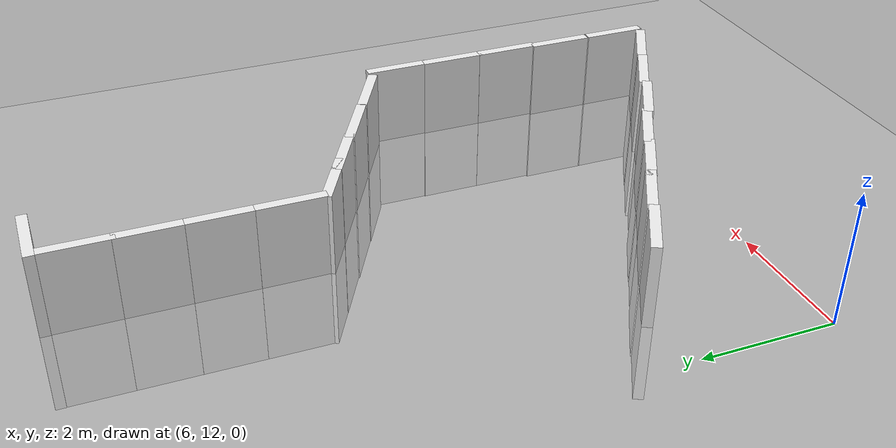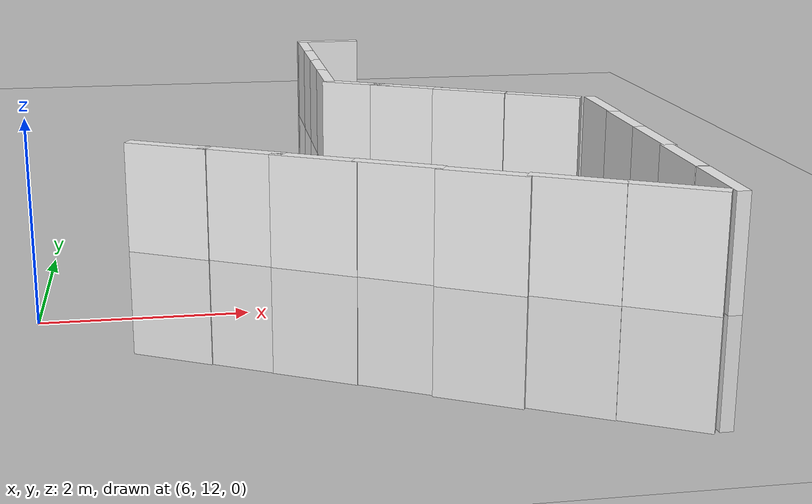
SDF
<sdf version="1.6">
 <world name="default">
  <model name="ground_plane">
   <static>1</static>
   <link name="link">
    <collision name="collision">
     <geometry><plane><normal>0 0 1</normal><size>100 100</size></plane></geometry>
     <surface><friction><ode><mu>100</mu><mu2>50</mu2></ode></friction></surface>
    </collision>
    <visual name="visual">
     <cast_shadows>0</cast_shadows>
     <geometry><plane><normal>0 0 1</normal><size>100 100</size></plane></geometry>
     <material>
      <script><uri>file://media/materials/scripts/gazebo.material</uri><name>Gazebo/Grey</name></script>
     </material>
    </visual>
   </link>
  </model>
  <model name="wall_left_07_clone_3_clone_2_clone_0_clone">
   <link name="Wall_10">
    <inertial>
     <mass>1</mass>
     <inertia><ixx>1</ixx><ixy>0</ixy><ixz>0</ixz><iyy>1</iyy><iyz>0</iyz><izz>1</izz></inertia>
    </inertial>
    <visual name="Wall_10_Visual_0">
     <geometry><box><size>1 0.15 2.5</size></box></geometry>
     <material>
      <script>
       <uri>model://wall/materials/scripts</uri>
       <uri>model://wall/materials/textures</uri>
       <name>wall_white</name>
      </script>
      <shader type="pixel"><normal_map>__default__</normal_map></shader>
      <ambient>1 1 1 1</ambient>
      <diffuse>1 1 1 1</diffuse>
      <specular>0 0 0 1</specular>
      <emissive>0 0 0 1</emissive>
     </material>
     <meta><layer>0</layer></meta>
    </visual>
    <collision name="Wall_10_Collision_0">
     <geometry><box><size>1 0.15 2.5</size></box></geometry>
     <surface>
      <friction>
       <ode><mu>1</mu><mu2>1</mu2><fdir1>0 0 0</fdir1><slip1>0</slip1><slip2>0</slip2></ode>
       <torsional>
        <coefficient>1</coefficient>
        <patch_radius>0</patch_radius>
        <surface_radius>0</surface_radius>
        <use_patch_radius>1</use_patch_radius>
        <ode><slip>0</slip></ode>
       </torsional>
      </friction>
      <bounce><restitution_coefficient>0</restitution_coefficient><threshold>1e+06</threshold></bounce>
      <contact>
       <collide_without_contact>0</collide_without_contact>
       <collide_without_contact_bitmask>1</collide_without_contact_bitmask>
       <collide_bitmask>1</collide_bitmask>
       <ode>
        <soft_cfm>0</soft_cfm>
        <soft_erp>0.2</soft_erp>
        <kp>1e+13</kp>
        <kd>1</kd>
        <max_vel>0.01</max_vel>
        <min_depth>0</min_depth>
       </ode>
       <bullet>
        <split_impulse>1</split_impulse>
        <split_impulse_penetration_threshold>-0.01</split_impulse_penetration_threshold>
        <soft_cfm>0</soft_cfm>
        <soft_erp>0.2</soft_erp>
        <kp>1e+13</kp>
        <kd>1</kd>
       </bullet>
      </contact>
     </surface>
    </collision>
   </link>
   <static>1</static>
   <pose>7.26543 14.065 0 0 -0 2.64803</pose>
  </model>
  <model name="wall_left_07_clone_3_clone_2_clone_0_clone_clone">
   <link name="Wall_10">
    <inertial>
     <mass>1</mass>
     <inertia><ixx>1</ixx><ixy>0</ixy><ixz>0</ixz><iyy>1</iyy><iyz>0</iyz><izz>1</izz></inertia>
    </inertial>
    <visual name="Wall_10_Visual_0">
     <geometry><box><size>1 0.15 2.5</size></box></geometry>
     <material>
      <script>
       <uri>model://wall/materials/scripts</uri>
       <uri>model://wall/materials/textures</uri>
       <name>wall_white</name>
      </script>
      <shader type="pixel"><normal_map>__default__</normal_map></shader>
      <ambient>1 1 1 1</ambient>
      <diffuse>1 1 1 1</diffuse>
      <specular>0 0 0 1</specular>
      <emissive>0 0 0 1</emissive>
     </material>
     <meta><layer>0</layer></meta>
    </visual>
    <collision name="Wall_10_Collision_0">
     <geometry><box><size>1 0.15 2.5</size></box></geometry>
     <surface>
      <friction>
       <ode><mu>1</mu><mu2>1</mu2><fdir1>0 0 0</fdir1><slip1>0</slip1><slip2>0</slip2></ode>
       <torsional>
        <coefficient>1</coefficient>
        <patch_radius>0</patch_radius>
        <surface_radius>0</surface_radius>
        <use_patch_radius>1</use_patch_radius>
        <ode><slip>0</slip></ode>
       </torsional>
      </friction>
      <bounce><restitution_coefficient>0</restitution_coefficient><threshold>1e+06</threshold></bounce>
      <contact>
       <collide_without_contact>0</collide_without_contact>
       <collide_without_contact_bitmask>1</collide_without_contact_bitmask>
       <collide_bitmask>1</collide_bitmask>
       <ode>
        <soft_cfm>0</soft_cfm>
        <soft_erp>0.2</soft_erp>
        <kp>1e+13</kp>
        <kd>1</kd>
        <max_vel>0.01</max_vel>
        <min_depth>0</min_depth>
       </ode>
       <bullet>
        <split_impulse>1</split_impulse>
        <split_impulse_penetration_threshold>-0.01</split_impulse_penetration_threshold>
        <soft_cfm>0</soft_cfm>
        <soft_erp>0.2</soft_erp>
        <kp>1e+13</kp>
        <kd>1</kd>
       </bullet>
      </contact>
     </surface>
    </collision>
   </link>
   <static>1</static>
   <pose>8.05772 13.6577 0 0 -0 2.64803</pose>
  </model>
  <model name="wall_left_07_clone_3_clone_2_clone_0_clone_clone_0">
   <link name="Wall_10">
    <inertial>
     <mass>1</mass>
     <inertia><ixx>1</ixx><ixy>0</ixy><ixz>0</ixz><iyy>1</iyy><iyz>0</iyz><izz>1</izz></inertia>
    </inertial>
    <visual name="Wall_10_Visual_0">
     <geometry><box><size>1 0.15 2.5</size></box></geometry>
     <material>
      <script>
       <uri>model://wall/materials/scripts</uri>
       <uri>model://wall/materials/textures</uri>
       <name>wall_white</name>
      </script>
      <shader type="pixel"><normal_map>__default__</normal_map></shader>
      <ambient>1 1 1 1</ambient>
      <diffuse>1 1 1 1</diffuse>
      <specular>0 0 0 1</specular>
      <emissive>0 0 0 1</emissive>
     </material>
     <meta><layer>0</layer></meta>
    </visual>
    <collision name="Wall_10_Collision_0">
     <geometry><box><size>1 0.15 2.5</size></box></geometry>
     <surface>
      <friction>
       <ode><mu>1</mu><mu2>1</mu2><fdir1>0 0 0</fdir1><slip1>0</slip1><slip2>0</slip2></ode>
       <torsional>
        <coefficient>1</coefficient>
        <patch_radius>0</patch_radius>
        <surface_radius>0</surface_radius>
        <use_patch_radius>1</use_patch_radius>
        <ode><slip>0</slip></ode>
       </torsional>
      </friction>
      <bounce><restitution_coefficient>0</restitution_coefficient><threshold>1e+06</threshold></bounce>
      <contact>
       <collide_without_contact>0</collide_without_contact>
       <collide_without_contact_bitmask>1</collide_without_contact_bitmask>
       <collide_bitmask>1</collide_bitmask>
       <ode>
        <soft_cfm>0</soft_cfm>
        <soft_erp>0.2</soft_erp>
        <kp>1e+13</kp>
        <kd>1</kd>
        <max_vel>0.01</max_vel>
        <min_depth>0</min_depth>
       </ode>
       <bullet>
        <split_impulse>1</split_impulse>
        <split_impulse_penetration_threshold>-0.01</split_impulse_penetration_threshold>
        <soft_cfm>0</soft_cfm>
        <soft_erp>0.2</soft_erp>
        <kp>1e+13</kp>
        <kd>1</kd>
       </bullet>
      </contact>
     </surface>
    </collision>
   </link>
   <static>1</static>
   <pose>8.8079 13.2442 0 0 -0 2.64803</pose>
  </model>
  <model name="wall_left_07_clone_3_clone_2_clone_0_clone_clone_1">
   <link name="Wall_10">
    <inertial>
     <mass>1</mass>
     <inertia><ixx>1</ixx><ixy>0</ixy><ixz>0</ixz><iyy>1</iyy><iyz>0</iyz><izz>1</izz></inertia>
    </inertial>
    <visual name="Wall_10_Visual_0">
     <geometry><box><size>1 0.15 2.5</size></box></geometry>
     <material>
      <script>
       <uri>model://wall/materials/scripts</uri>
       <uri>model://wall/materials/textures</uri>
       <name>wall_white</name>
      </script>
      <shader type="pixel"><normal_map>__default__</normal_map></shader>
      <ambient>1 1 1 1</ambient>
      <diffuse>1 1 1 1</diffuse>
      <specular>0 0 0 1</specular>
      <emissive>0 0 0 1</emissive>
     </material>
     <meta><layer>0</layer></meta>
    </visual>
    <collision name="Wall_10_Collision_0">
     <geometry><box><size>1 0.15 2.5</size></box></geometry>
     <surface>
      <friction>
       <ode><mu>1</mu><mu2>1</mu2><fdir1>0 0 0</fdir1><slip1>0</slip1><slip2>0</slip2></ode>
       <torsional>
        <coefficient>1</coefficient>
        <patch_radius>0</patch_radius>
        <surface_radius>0</surface_radius>
        <use_patch_radius>1</use_patch_radius>
        <ode><slip>0</slip></ode>
       </torsional>
      </friction>
      <bounce><restitution_coefficient>0</restitution_coefficient><threshold>1e+06</threshold></bounce>
      <contact>
       <collide_without_contact>0</collide_without_contact>
       <collide_without_contact_bitmask>1</collide_without_contact_bitmask>
       <collide_bitmask>1</collide_bitmask>
       <ode>
        <soft_cfm>0</soft_cfm>
        <soft_erp>0.2</soft_erp>
        <kp>1e+13</kp>
        <kd>1</kd>
        <max_vel>0.01</max_vel>
        <min_depth>0</min_depth>
       </ode>
       <bullet>
        <split_impulse>1</split_impulse>
        <split_impulse_penetration_threshold>-0.01</split_impulse_penetration_threshold>
        <soft_cfm>0</soft_cfm>
        <soft_erp>0.2</soft_erp>
        <kp>1e+13</kp>
        <kd>1</kd>
       </bullet>
      </contact>
     </surface>
    </collision>
   </link>
   <static>1</static>
   <pose>9.63376 12.8136 0 0 -0 2.64803</pose>
  </model>
  <model name="wall_left_07_clone_3_clone_2_clone_0_clone_clone_1_clone">
   <link name="Wall_10">
    <inertial>
     <mass>1</mass>
     <inertia><ixx>1</ixx><ixy>0</ixy><ixz>0</ixz><iyy>1</iyy><iyz>0</iyz><izz>1</izz></inertia>
    </inertial>
    <visual name="Wall_10_Visual_0">
     <geometry><box><size>1 0.15 2.5</size></box></geometry>
     <material>
      <script>
       <uri>model://wall/materials/scripts</uri>
       <uri>model://wall/materials/textures</uri>
       <name>wall_white</name>
      </script>
      <shader type="pixel"><normal_map>__default__</normal_map></shader>
      <ambient>1 1 1 1</ambient>
      <diffuse>1 1 1 1</diffuse>
      <specular>0 0 0 1</specular>
      <emissive>0 0 0 1</emissive>
     </material>
     <meta><layer>0</layer></meta>
    </visual>
    <collision name="Wall_10_Collision_0">
     <geometry><box><size>1 0.15 2.5</size></box></geometry>
     <surface>
      <friction>
       <ode><mu>1</mu><mu2>1</mu2><fdir1>0 0 0</fdir1><slip1>0</slip1><slip2>0</slip2></ode>
       <torsional>
        <coefficient>1</coefficient>
        <patch_radius>0</patch_radius>
        <surface_radius>0</surface_radius>
        <use_patch_radius>1</use_patch_radius>
        <ode><slip>0</slip></ode>
       </torsional>
      </friction>
      <bounce><restitution_coefficient>0</restitution_coefficient><threshold>1e+06</threshold></bounce>
      <contact>
       <collide_without_contact>0</collide_without_contact>
       <collide_without_contact_bitmask>1</collide_without_contact_bitmask>
       <collide_bitmask>1</collide_bitmask>
       <ode>
        <soft_cfm>0</soft_cfm>
        <soft_erp>0.2</soft_erp>
        <kp>1e+13</kp>
        <kd>1</kd>
        <max_vel>0.01</max_vel>
        <min_depth>0</min_depth>
       </ode>
       <bullet>
        <split_impulse>1</split_impulse>
        <split_impulse_penetration_threshold>-0.01</split_impulse_penetration_threshold>
        <soft_cfm>0</soft_cfm>
        <soft_erp>0.2</soft_erp>
        <kp>1e+13</kp>
        <kd>1</kd>
       </bullet>
      </contact>
     </surface>
    </collision>
   </link>
   <static>1</static>
   <pose>10.5012 17.2166 0 0 -0 2.64803</pose>
  </model>
  <model name="wall_left_07_clone_3_clone_2_clone_0_clone_clone_1_clone_0">
   <link name="Wall_10">
    <inertial>
     <mass>1</mass>
     <inertia><ixx>1</ixx><ixy>0</ixy><ixz>0</ixz><iyy>1</iyy><iyz>0</iyz><izz>1</izz></inertia>
    </inertial>
    <visual name="Wall_10_Visual_0">
     <geometry><box><size>1 0.15 2.5</size></box></geometry>
     <material>
      <script>
       <uri>model://wall/materials/scripts</uri>
       <uri>model://wall/materials/textures</uri>
       <name>wall_white</name>
      </script>
      <shader type="pixel"><normal_map>__default__</normal_map></shader>
      <ambient>1 1 1 1</ambient>
      <diffuse>1 1 1 1</diffuse>
      <specular>0 0 0 1</specular>
      <emissive>0 0 0 1</emissive>
     </material>
     <meta><layer>0</layer></meta>
    </visual>
    <collision name="Wall_10_Collision_0">
     <geometry><box><size>1 0.15 2.5</size></box></geometry>
     <surface>
      <friction>
       <ode><mu>1</mu><mu2>1</mu2><fdir1>0 0 0</fdir1><slip1>0</slip1><slip2>0</slip2></ode>
       <torsional>
        <coefficient>1</coefficient>
        <patch_radius>0</patch_radius>
        <surface_radius>0</surface_radius>
        <use_patch_radius>1</use_patch_radius>
        <ode><slip>0</slip></ode>
       </torsional>
      </friction>
      <bounce><restitution_coefficient>0</restitution_coefficient><threshold>1e+06</threshold></bounce>
      <contact>
       <collide_without_contact>0</collide_without_contact>
       <collide_without_contact_bitmask>1</collide_without_contact_bitmask>
       <collide_bitmask>1</collide_bitmask>
       <ode>
        <soft_cfm>0</soft_cfm>
        <soft_erp>0.2</soft_erp>
        <kp>1e+13</kp>
        <kd>1</kd>
        <max_vel>0.01</max_vel>
        <min_depth>0</min_depth>
       </ode>
       <bullet>
        <split_impulse>1</split_impulse>
        <split_impulse_penetration_threshold>-0.01</split_impulse_penetration_threshold>
        <soft_cfm>0</soft_cfm>
        <soft_erp>0.2</soft_erp>
        <kp>1e+13</kp>
        <kd>1</kd>
       </bullet>
      </contact>
     </surface>
    </collision>
   </link>
   <static>1</static>
   <pose>9.88163 17.5537 0 0 -0 2.64803</pose>
  </model>
  <model name="wall_left_07_clone_3_clone_1_clone_clone">
   <link name="Wall_10">
    <inertial>
     <mass>1</mass>
     <inertia><ixx>1</ixx><ixy>0</ixy><ixz>0</ixz><iyy>1</iyy><iyz>0</iyz><izz>1</izz></inertia>
    </inertial>
    <visual name="Wall_10_Visual_0">
     <geometry><box><size>1 0.15 2.5</size></box></geometry>
     <material>
      <script>
       <uri>model://wall/materials/scripts</uri>
       <uri>model://wall/materials/textures</uri>
       <name>wall_white</name>
      </script>
      <shader type="pixel"><normal_map>__default__</normal_map></shader>
      <ambient>1 1 1 1</ambient>
      <diffuse>1 1 1 1</diffuse>
      <specular>0 0 0 1</specular>
      <emissive>0 0 0 1</emissive>
     </material>
     <meta><layer>0</layer></meta>
    </visual>
    <collision name="Wall_10_Collision_0">
     <geometry><box><size>1 0.15 2.5</size></box></geometry>
     <surface>
      <friction>
       <ode><mu>1</mu><mu2>1</mu2><fdir1>0 0 0</fdir1><slip1>0</slip1><slip2>0</slip2></ode>
       <torsional>
        <coefficient>1</coefficient>
        <patch_radius>0</patch_radius>
        <surface_radius>0</surface_radius>
        <use_patch_radius>1</use_patch_radius>
        <ode><slip>0</slip></ode>
       </torsional>
      </friction>
      <bounce><restitution_coefficient>0</restitution_coefficient><threshold>1e+06</threshold></bounce>
      <contact>
       <collide_without_contact>0</collide_without_contact>
       <collide_without_contact_bitmask>1</collide_without_contact_bitmask>
       <collide_bitmask>1</collide_bitmask>
       <ode>
        <soft_cfm>0</soft_cfm>
        <soft_erp>0.2</soft_erp>
        <kp>1e+13</kp>
        <kd>1</kd>
        <max_vel>0.01</max_vel>
        <min_depth>0</min_depth>
       </ode>
       <bullet>
        <split_impulse>1</split_impulse>
        <split_impulse_penetration_threshold>-0.01</split_impulse_penetration_threshold>
        <soft_cfm>0</soft_cfm>
        <soft_erp>0.2</soft_erp>
        <kp>1e+13</kp>
        <kd>1</kd>
       </bullet>
      </contact>
     </surface>
    </collision>
   </link>
   <static>1</static>
   <pose>9.50949 18.2548 0 0 -0 1.57</pose>
  </model>
  <model name="wall_left_07_clone_3_clone_1_clone_clone_0">
   <link name="Wall_10">
    <inertial>
     <mass>1</mass>
     <inertia><ixx>1</ixx><ixy>0</ixy><ixz>0</ixz><iyy>1</iyy><iyz>0</iyz><izz>1</izz></inertia>
    </inertial>
    <visual name="Wall_10_Visual_0">
     <geometry><box><size>1 0.15 2.5</size></box></geometry>
     <material>
      <script>
       <uri>model://wall/materials/scripts</uri>
       <uri>model://wall/materials/textures</uri>
       <name>wall_white</name>
      </script>
      <shader type="pixel"><normal_map>__default__</normal_map></shader>
      <ambient>1 1 1 1</ambient>
      <diffuse>1 1 1 1</diffuse>
      <specular>0 0 0 1</specular>
      <emissive>0 0 0 1</emissive>
     </material>
     <meta><layer>0</layer></meta>
    </visual>
    <collision name="Wall_10_Collision_0">
     <geometry><box><size>1 0.15 2.5</size></box></geometry>
     <surface>
      <friction>
       <ode><mu>1</mu><mu2>1</mu2><fdir1>0 0 0</fdir1><slip1>0</slip1><slip2>0</slip2></ode>
       <torsional>
        <coefficient>1</coefficient>
        <patch_radius>0</patch_radius>
        <surface_radius>0</surface_radius>
        <use_patch_radius>1</use_patch_radius>
        <ode><slip>0</slip></ode>
       </torsional>
      </friction>
      <bounce><restitution_coefficient>0</restitution_coefficient><threshold>1e+06</threshold></bounce>
      <contact>
       <collide_without_contact>0</collide_without_contact>
       <collide_without_contact_bitmask>1</collide_without_contact_bitmask>
       <collide_bitmask>1</collide_bitmask>
       <ode>
        <soft_cfm>0</soft_cfm>
        <soft_erp>0.2</soft_erp>
        <kp>1e+13</kp>
        <kd>1</kd>
        <max_vel>0.01</max_vel>
        <min_depth>0</min_depth>
       </ode>
       <bullet>
        <split_impulse>1</split_impulse>
        <split_impulse_penetration_threshold>-0.01</split_impulse_penetration_threshold>
        <soft_cfm>0</soft_cfm>
        <soft_erp>0.2</soft_erp>
        <kp>1e+13</kp>
        <kd>1</kd>
       </bullet>
      </contact>
     </surface>
    </collision>
   </link>
   <static>1</static>
   <pose>9.5109 19.1805 0 0 -0 1.57</pose>
  </model>
  <model name="wall_left_07_clone_3_clone_1_clone_clone_1">
   <link name="Wall_10">
    <inertial>
     <mass>1</mass>
     <inertia><ixx>1</ixx><ixy>0</ixy><ixz>0</ixz><iyy>1</iyy><iyz>0</iyz><izz>1</izz></inertia>
    </inertial>
    <visual name="Wall_10_Visual_0">
     <geometry><box><size>1 0.15 2.5</size></box></geometry>
     <material>
      <script>
       <uri>model://wall/materials/scripts</uri>
       <uri>model://wall/materials/textures</uri>
       <name>wall_white</name>
      </script>
      <shader type="pixel"><normal_map>__default__</normal_map></shader>
      <ambient>1 1 1 1</ambient>
      <diffuse>1 1 1 1</diffuse>
      <specular>0 0 0 1</specular>
      <emissive>0 0 0 1</emissive>
     </material>
     <meta><layer>0</layer></meta>
    </visual>
    <collision name="Wall_10_Collision_0">
     <geometry><box><size>1 0.15 2.5</size></box></geometry>
     <surface>
      <friction>
       <ode><mu>1</mu><mu2>1</mu2><fdir1>0 0 0</fdir1><slip1>0</slip1><slip2>0</slip2></ode>
       <torsional>
        <coefficient>1</coefficient>
        <patch_radius>0</patch_radius>
        <surface_radius>0</surface_radius>
        <use_patch_radius>1</use_patch_radius>
        <ode><slip>0</slip></ode>
       </torsional>
      </friction>
      <bounce><restitution_coefficient>0</restitution_coefficient><threshold>1e+06</threshold></bounce>
      <contact>
       <collide_without_contact>0</collide_without_contact>
       <collide_without_contact_bitmask>1</collide_without_contact_bitmask>
       <collide_bitmask>1</collide_bitmask>
       <ode>
        <soft_cfm>0</soft_cfm>
        <soft_erp>0.2</soft_erp>
        <kp>1e+13</kp>
        <kd>1</kd>
        <max_vel>0.01</max_vel>
        <min_depth>0</min_depth>
       </ode>
       <bullet>
        <split_impulse>1</split_impulse>
        <split_impulse_penetration_threshold>-0.01</split_impulse_penetration_threshold>
        <soft_cfm>0</soft_cfm>
        <soft_erp>0.2</soft_erp>
        <kp>1e+13</kp>
        <kd>1</kd>
       </bullet>
      </contact>
     </surface>
    </collision>
   </link>
   <static>1</static>
   <pose>9.51211 20.107 0 0 -0 1.57</pose>
  </model>
  <model name="wall_left_07_clone_3_clone_1_clone_clone_2">
   <link name="Wall_10">
    <inertial>
     <mass>1</mass>
     <inertia><ixx>1</ixx><ixy>0</ixy><ixz>0</ixz><iyy>1</iyy><iyz>0</iyz><izz>1</izz></inertia>
    </inertial>
    <visual name="Wall_10_Visual_0">
     <geometry><box><size>1 0.15 2.5</size></box></geometry>
     <material>
      <script>
       <uri>model://wall/materials/scripts</uri>
       <uri>model://wall/materials/textures</uri>
       <name>wall_white</name>
      </script>
      <shader type="pixel"><normal_map>__default__</normal_map></shader>
      <ambient>1 1 1 1</ambient>
      <diffuse>1 1 1 1</diffuse>
      <specular>0 0 0 1</specular>
      <emissive>0 0 0 1</emissive>
     </material>
     <meta><layer>0</layer></meta>
    </visual>
    <collision name="Wall_10_Collision_0">
     <geometry><box><size>1 0.15 2.5</size></box></geometry>
     <surface>
      <friction>
       <ode><mu>1</mu><mu2>1</mu2><fdir1>0 0 0</fdir1><slip1>0</slip1><slip2>0</slip2></ode>
       <torsional>
        <coefficient>1</coefficient>
        <patch_radius>0</patch_radius>
        <surface_radius>0</surface_radius>
        <use_patch_radius>1</use_patch_radius>
        <ode><slip>0</slip></ode>
       </torsional>
      </friction>
      <bounce><restitution_coefficient>0</restitution_coefficient><threshold>1e+06</threshold></bounce>
      <contact>
       <collide_without_contact>0</collide_without_contact>
       <collide_without_contact_bitmask>1</collide_without_contact_bitmask>
       <collide_bitmask>1</collide_bitmask>
       <ode>
        <soft_cfm>0</soft_cfm>
        <soft_erp>0.2</soft_erp>
        <kp>1e+13</kp>
        <kd>1</kd>
        <max_vel>0.01</max_vel>
        <min_depth>0</min_depth>
       </ode>
       <bullet>
        <split_impulse>1</split_impulse>
        <split_impulse_penetration_threshold>-0.01</split_impulse_penetration_threshold>
        <soft_cfm>0</soft_cfm>
        <soft_erp>0.2</soft_erp>
        <kp>1e+13</kp>
        <kd>1</kd>
       </bullet>
      </contact>
     </surface>
    </collision>
   </link>
   <static>1</static>
   <pose>9.51314 21.0494 0 0 -0 1.57</pose>
  </model>
  <model name="wall_left_07_clone_3_clone_2_clone_0_clone_clone_1_clone_1">
   <link name="Wall_10">
    <inertial>
     <mass>1</mass>
     <inertia><ixx>1</ixx><ixy>0</ixy><ixz>0</ixz><iyy>1</iyy><iyz>0</iyz><izz>1</izz></inertia>
    </inertial>
    <visual name="Wall_10_Visual_0">
     <geometry><box><size>1 0.15 2.5</size></box></geometry>
     <material>
      <script>
       <uri>model://wall/materials/scripts</uri>
       <uri>model://wall/materials/textures</uri>
       <name>wall_white</name>
      </script>
      <shader type="pixel"><normal_map>__default__</normal_map></shader>
      <ambient>1 1 1 1</ambient>
      <diffuse>1 1 1 1</diffuse>
      <specular>0 0 0 1</specular>
      <emissive>0 0 0 1</emissive>
     </material>
     <meta><layer>0</layer></meta>
    </visual>
    <collision name="Wall_10_Collision_0">
     <geometry><box><size>1 0.15 2.5</size></box></geometry>
     <surface>
      <friction>
       <ode><mu>1</mu><mu2>1</mu2><fdir1>0 0 0</fdir1><slip1>0</slip1><slip2>0</slip2></ode>
       <torsional>
        <coefficient>1</coefficient>
        <patch_radius>0</patch_radius>
        <surface_radius>0</surface_radius>
        <use_patch_radius>1</use_patch_radius>
        <ode><slip>0</slip></ode>
       </torsional>
      </friction>
      <bounce><restitution_coefficient>0</restitution_coefficient><threshold>1e+06</threshold></bounce>
      <contact>
       <collide_without_contact>0</collide_without_contact>
       <collide_without_contact_bitmask>1</collide_without_contact_bitmask>
       <collide_bitmask>1</collide_bitmask>
       <ode>
        <soft_cfm>0</soft_cfm>
        <soft_erp>0.2</soft_erp>
        <kp>1e+13</kp>
        <kd>1</kd>
        <max_vel>0.01</max_vel>
        <min_depth>0</min_depth>
       </ode>
       <bullet>
        <split_impulse>1</split_impulse>
        <split_impulse_penetration_threshold>-0.01</split_impulse_penetration_threshold>
        <soft_cfm>0</soft_cfm>
        <soft_erp>0.2</soft_erp>
        <kp>1e+13</kp>
        <kd>1</kd>
       </bullet>
      </contact>
     </surface>
    </collision>
   </link>
   <static>1</static>
   <pose>10.4331 12.3515 0 0 -0 2.64803</pose>
  </model>
  <model name="wall_left_07_clone_3_clone_2_clone_0_clone_clone_1_clone_2">
   <link name="Wall_10">
    <inertial>
     <mass>1</mass>
     <inertia><ixx>1</ixx><ixy>0</ixy><ixz>0</ixz><iyy>1</iyy><iyz>0</iyz><izz>1</izz></inertia>
    </inertial>
    <visual name="Wall_10_Visual_0">
     <geometry><box><size>1 0.15 2.5</size></box></geometry>
     <material>
      <script>
       <uri>model://wall/materials/scripts</uri>
       <uri>model://wall/materials/textures</uri>
       <name>wall_white</name>
      </script>
      <shader type="pixel"><normal_map>__default__</normal_map></shader>
      <ambient>1 1 1 1</ambient>
      <diffuse>1 1 1 1</diffuse>
      <specular>0 0 0 1</specular>
      <emissive>0 0 0 1</emissive>
     </material>
     <meta><layer>0</layer></meta>
    </visual>
    <collision name="Wall_10_Collision_0">
     <geometry><box><size>1 0.15 2.5</size></box></geometry>
     <surface>
      <friction>
       <ode><mu>1</mu><mu2>1</mu2><fdir1>0 0 0</fdir1><slip1>0</slip1><slip2>0</slip2></ode>
       <torsional>
        <coefficient>1</coefficient>
        <patch_radius>0</patch_radius>
        <surface_radius>0</surface_radius>
        <use_patch_radius>1</use_patch_radius>
        <ode><slip>0</slip></ode>
       </torsional>
      </friction>
      <bounce><restitution_coefficient>0</restitution_coefficient><threshold>1e+06</threshold></bounce>
      <contact>
       <collide_without_contact>0</collide_without_contact>
       <collide_without_contact_bitmask>1</collide_without_contact_bitmask>
       <collide_bitmask>1</collide_bitmask>
       <ode>
        <soft_cfm>0</soft_cfm>
        <soft_erp>0.2</soft_erp>
        <kp>1e+13</kp>
        <kd>1</kd>
        <max_vel>0.01</max_vel>
        <min_depth>0</min_depth>
       </ode>
       <bullet>
        <split_impulse>1</split_impulse>
        <split_impulse_penetration_threshold>-0.01</split_impulse_penetration_threshold>
        <soft_cfm>0</soft_cfm>
        <soft_erp>0.2</soft_erp>
        <kp>1e+13</kp>
        <kd>1</kd>
       </bullet>
      </contact>
     </surface>
    </collision>
   </link>
   <static>1</static>
   <pose>11.2861 11.9432 0 0 -0 2.64803</pose>
  </model>
  <model name="wall_left_07_clone_3_clone_2_clone_0_clone_clone_1_clone_3">
   <link name="Wall_10">
    <inertial>
     <mass>1</mass>
     <inertia><ixx>1</ixx><ixy>0</ixy><ixz>0</ixz><iyy>1</iyy><iyz>0</iyz><izz>1</izz></inertia>
    </inertial>
    <visual name="Wall_10_Visual_0">
     <geometry><box><size>1 0.15 2.5</size></box></geometry>
     <material>
      <script>
       <uri>model://wall/materials/scripts</uri>
       <uri>model://wall/materials/textures</uri>
       <name>wall_white</name>
      </script>
      <shader type="pixel"><normal_map>__default__</normal_map></shader>
      <ambient>1 1 1 1</ambient>
      <diffuse>1 1 1 1</diffuse>
      <specular>0 0 0 1</specular>
      <emissive>0 0 0 1</emissive>
     </material>
     <meta><layer>0</layer></meta>
    </visual>
    <collision name="Wall_10_Collision_0">
     <geometry><box><size>1 0.15 2.5</size></box></geometry>
     <surface>
      <friction>
       <ode><mu>1</mu><mu2>1</mu2><fdir1>0 0 0</fdir1><slip1>0</slip1><slip2>0</slip2></ode>
       <torsional>
        <coefficient>1</coefficient>
        <patch_radius>0</patch_radius>
        <surface_radius>0</surface_radius>
        <use_patch_radius>1</use_patch_radius>
        <ode><slip>0</slip></ode>
       </torsional>
      </friction>
      <bounce><restitution_coefficient>0</restitution_coefficient><threshold>1e+06</threshold></bounce>
      <contact>
       <collide_without_contact>0</collide_without_contact>
       <collide_without_contact_bitmask>1</collide_without_contact_bitmask>
       <collide_bitmask>1</collide_bitmask>
       <ode>
        <soft_cfm>0</soft_cfm>
        <soft_erp>0.2</soft_erp>
        <kp>1e+13</kp>
        <kd>1</kd>
        <max_vel>0.01</max_vel>
        <min_depth>0</min_depth>
       </ode>
       <bullet>
        <split_impulse>1</split_impulse>
        <split_impulse_penetration_threshold>-0.01</split_impulse_penetration_threshold>
        <soft_cfm>0</soft_cfm>
        <soft_erp>0.2</soft_erp>
        <kp>1e+13</kp>
        <kd>1</kd>
       </bullet>
      </contact>
     </surface>
    </collision>
   </link>
   <static>1</static>
   <pose>12.1549 11.4887 0 0 -0 2.64803</pose>
  </model>
  <model name="wall_left_12_clone_7_clone_1_clone_0_clone">
   <link name="Wall_10">
    <inertial>
     <mass>1</mass>
     <inertia><ixx>1</ixx><ixy>0</ixy><ixz>0</ixz><iyy>1</iyy><iyz>0</iyz><izz>1</izz></inertia>
    </inertial>
    <visual name="Wall_10_Visual_0">
     <geometry><box><size>1 0.15 2.5</size></box></geometry>
     <material>
      <script>
       <uri>model://wall/materials/scripts</uri>
       <uri>model://wall/materials/textures</uri>
       <name>wall_white</name>
      </script>
      <shader type="pixel"><normal_map>__default__</normal_map></shader>
      <ambient>1 1 1 1</ambient>
      <diffuse>1 1 1 1</diffuse>
      <specular>0 0 0 1</specular>
      <emissive>0 0 0 1</emissive>
     </material>
     <meta><layer>0</layer></meta>
    </visual>
    <collision name="Wall_10_Collision_0">
     <geometry><box><size>1 0.15 2.5</size></box></geometry>
     <surface>
      <friction>
       <ode><mu>1</mu><mu2>1</mu2><fdir1>0 0 0</fdir1><slip1>0</slip1><slip2>0</slip2></ode>
       <torsional>
        <coefficient>1</coefficient>
        <patch_radius>0</patch_radius>
        <surface_radius>0</surface_radius>
        <use_patch_radius>1</use_patch_radius>
        <ode><slip>0</slip></ode>
       </torsional>
      </friction>
      <bounce><restitution_coefficient>0</restitution_coefficient><threshold>1e+06</threshold></bounce>
      <contact>
       <collide_without_contact>0</collide_without_contact>
       <collide_without_contact_bitmask>1</collide_without_contact_bitmask>
       <collide_bitmask>1</collide_bitmask>
       <ode>
        <soft_cfm>0</soft_cfm>
        <soft_erp>0.2</soft_erp>
        <kp>1e+13</kp>
        <kd>1</kd>
        <max_vel>0.01</max_vel>
        <min_depth>0</min_depth>
       </ode>
       <bullet>
        <split_impulse>1</split_impulse>
        <split_impulse_penetration_threshold>-0.01</split_impulse_penetration_threshold>
        <soft_cfm>0</soft_cfm>
        <soft_erp>0.2</soft_erp>
        <kp>1e+13</kp>
        <kd>1</kd>
       </bullet>
      </contact>
     </surface>
    </collision>
   </link>
   <static>1</static>
   <pose>12.6994 11.7185 0 0 -0 1.57</pose>
  </model>
  <model name="wall_left_12_clone_7_clone_1_clone_0_clone_0">
   <link name="Wall_10">
    <inertial>
     <mass>1</mass>
     <inertia><ixx>1</ixx><ixy>0</ixy><ixz>0</ixz><iyy>1</iyy><iyz>0</iyz><izz>1</izz></inertia>
    </inertial>
    <visual name="Wall_10_Visual_0">
     <geometry><box><size>1 0.15 2.5</size></box></geometry>
     <material>
      <script>
       <uri>model://wall/materials/scripts</uri>
       <uri>model://wall/materials/textures</uri>
       <name>wall_white</name>
      </script>
      <shader type="pixel"><normal_map>__default__</normal_map></shader>
      <ambient>1 1 1 1</ambient>
      <diffuse>1 1 1 1</diffuse>
      <specular>0 0 0 1</specular>
      <emissive>0 0 0 1</emissive>
     </material>
     <meta><layer>0</layer></meta>
    </visual>
    <collision name="Wall_10_Collision_0">
     <geometry><box><size>1 0.15 2.5</size></box></geometry>
     <surface>
      <friction>
       <ode><mu>1</mu><mu2>1</mu2><fdir1>0 0 0</fdir1><slip1>0</slip1><slip2>0</slip2></ode>
       <torsional>
        <coefficient>1</coefficient>
        <patch_radius>0</patch_radius>
        <surface_radius>0</surface_radius>
        <use_patch_radius>1</use_patch_radius>
        <ode><slip>0</slip></ode>
       </torsional>
      </friction>
      <bounce><restitution_coefficient>0</restitution_coefficient><threshold>1e+06</threshold></bounce>
      <contact>
       <collide_without_contact>0</collide_without_contact>
       <collide_without_contact_bitmask>1</collide_without_contact_bitmask>
       <collide_bitmask>1</collide_bitmask>
       <ode>
        <soft_cfm>0</soft_cfm>
        <soft_erp>0.2</soft_erp>
        <kp>1e+13</kp>
        <kd>1</kd>
        <max_vel>0.01</max_vel>
        <min_depth>0</min_depth>
       </ode>
       <bullet>
        <split_impulse>1</split_impulse>
        <split_impulse_penetration_threshold>-0.01</split_impulse_penetration_threshold>
        <soft_cfm>0</soft_cfm>
        <soft_erp>0.2</soft_erp>
        <kp>1e+13</kp>
        <kd>1</kd>
       </bullet>
      </contact>
     </surface>
    </collision>
   </link>
   <static>1</static>
   <pose>12.6992 12.7372 0 0 -0 1.57</pose>
  </model>
  <model name="wall_left_12_clone_7_clone_1_clone_0_clone_1">
   <link name="Wall_10">
    <inertial>
     <mass>1</mass>
     <inertia><ixx>1</ixx><ixy>0</ixy><ixz>0</ixz><iyy>1</iyy><iyz>0</iyz><izz>1</izz></inertia>
    </inertial>
    <visual name="Wall_10_Visual_0">
     <geometry><box><size>1 0.15 2.5</size></box></geometry>
     <material>
      <script>
       <uri>model://wall/materials/scripts</uri>
       <uri>model://wall/materials/textures</uri>
       <name>wall_white</name>
      </script>
      <shader type="pixel"><normal_map>__default__</normal_map></shader>
      <ambient>1 1 1 1</ambient>
      <diffuse>1 1 1 1</diffuse>
      <specular>0 0 0 1</specular>
      <emissive>0 0 0 1</emissive>
     </material>
     <meta><layer>0</layer></meta>
    </visual>
    <collision name="Wall_10_Collision_0">
     <geometry><box><size>1 0.15 2.5</size></box></geometry>
     <surface>
      <friction>
       <ode><mu>1</mu><mu2>1</mu2><fdir1>0 0 0</fdir1><slip1>0</slip1><slip2>0</slip2></ode>
       <torsional>
        <coefficient>1</coefficient>
        <patch_radius>0</patch_radius>
        <surface_radius>0</surface_radius>
        <use_patch_radius>1</use_patch_radius>
        <ode><slip>0</slip></ode>
       </torsional>
      </friction>
      <bounce><restitution_coefficient>0</restitution_coefficient><threshold>1e+06</threshold></bounce>
      <contact>
       <collide_without_contact>0</collide_without_contact>
       <collide_without_contact_bitmask>1</collide_without_contact_bitmask>
       <collide_bitmask>1</collide_bitmask>
       <ode>
        <soft_cfm>0</soft_cfm>
        <soft_erp>0.2</soft_erp>
        <kp>1e+13</kp>
        <kd>1</kd>
        <max_vel>0.01</max_vel>
        <min_depth>0</min_depth>
       </ode>
       <bullet>
        <split_impulse>1</split_impulse>
        <split_impulse_penetration_threshold>-0.01</split_impulse_penetration_threshold>
        <soft_cfm>0</soft_cfm>
        <soft_erp>0.2</soft_erp>
        <kp>1e+13</kp>
        <kd>1</kd>
       </bullet>
      </contact>
     </surface>
    </collision>
   </link>
   <static>1</static>
   <pose>12.7312 13.6941 0 0 -0 1.57</pose>
  </model>
  <model name="wall_left_07_clone_3_clone_2_clone_0_clone_clone_1_clone_clone">
   <link name="Wall_10">
    <inertial>
     <mass>1</mass>
     <inertia><ixx>1</ixx><ixy>0</ixy><ixz>0</ixz><iyy>1</iyy><iyz>0</iyz><izz>1</izz></inertia>
    </inertial>
    <visual name="Wall_10_Visual_0">
     <geometry><box><size>1 0.15 2.5</size></box></geometry>
     <material>
      <script>
       <uri>model://wall/materials/scripts</uri>
       <uri>model://wall/materials/textures</uri>
       <name>wall_white</name>
      </script>
      <shader type="pixel"><normal_map>__default__</normal_map></shader>
      <ambient>1 1 1 1</ambient>
      <diffuse>1 1 1 1</diffuse>
      <specular>0 0 0 1</specular>
      <emissive>0 0 0 1</emissive>
     </material>
     <meta><layer>0</layer></meta>
    </visual>
    <collision name="Wall_10_Collision_0">
     <geometry><box><size>1 0.15 2.5</size></box></geometry>
     <surface>
      <friction>
       <ode><mu>1</mu><mu2>1</mu2><fdir1>0 0 0</fdir1><slip1>0</slip1><slip2>0</slip2></ode>
       <torsional>
        <coefficient>1</coefficient>
        <patch_radius>0</patch_radius>
        <surface_radius>0</surface_radius>
        <use_patch_radius>1</use_patch_radius>
        <ode><slip>0</slip></ode>
       </torsional>
      </friction>
      <bounce><restitution_coefficient>0</restitution_coefficient><threshold>1e+06</threshold></bounce>
      <contact>
       <collide_without_contact>0</collide_without_contact>
       <collide_without_contact_bitmask>1</collide_without_contact_bitmask>
       <collide_bitmask>1</collide_bitmask>
       <ode>
        <soft_cfm>0</soft_cfm>
        <soft_erp>0.2</soft_erp>
        <kp>1e+13</kp>
        <kd>1</kd>
        <max_vel>0.01</max_vel>
        <min_depth>0</min_depth>
       </ode>
       <bullet>
        <split_impulse>1</split_impulse>
        <split_impulse_penetration_threshold>-0.01</split_impulse_penetration_threshold>
        <soft_cfm>0</soft_cfm>
        <soft_erp>0.2</soft_erp>
        <kp>1e+13</kp>
        <kd>1</kd>
       </bullet>
      </contact>
     </surface>
    </collision>
   </link>
   <static>1</static>
   <pose>11.2891 16.7754 0 0 -0 2.64803</pose>
  </model>
  <model name="wall_left_07_clone_3_clone_2_clone_0_clone_clone_1_clone_clone_0">
   <link name="Wall_10">
    <inertial>
     <mass>1</mass>
     <inertia><ixx>1</ixx><ixy>0</ixy><ixz>0</ixz><iyy>1</iyy><iyz>0</iyz><izz>1</izz></inertia>
    </inertial>
    <visual name="Wall_10_Visual_0">
     <geometry><box><size>1 0.15 2.5</size></box></geometry>
     <material>
      <script>
       <uri>model://wall/materials/scripts</uri>
       <uri>model://wall/materials/textures</uri>
       <name>wall_white</name>
      </script>
      <shader type="pixel"><normal_map>__default__</normal_map></shader>
      <ambient>1 1 1 1</ambient>
      <diffuse>1 1 1 1</diffuse>
      <specular>0 0 0 1</specular>
      <emissive>0 0 0 1</emissive>
     </material>
     <meta><layer>0</layer></meta>
    </visual>
    <collision name="Wall_10_Collision_0">
     <geometry><box><size>1 0.15 2.5</size></box></geometry>
     <surface>
      <friction>
       <ode><mu>1</mu><mu2>1</mu2><fdir1>0 0 0</fdir1><slip1>0</slip1><slip2>0</slip2></ode>
       <torsional>
        <coefficient>1</coefficient>
        <patch_radius>0</patch_radius>
        <surface_radius>0</surface_radius>
        <use_patch_radius>1</use_patch_radius>
        <ode><slip>0</slip></ode>
       </torsional>
      </friction>
      <bounce><restitution_coefficient>0</restitution_coefficient><threshold>1e+06</threshold></bounce>
      <contact>
       <collide_without_contact>0</collide_without_contact>
       <collide_without_contact_bitmask>1</collide_without_contact_bitmask>
       <collide_bitmask>1</collide_bitmask>
       <ode>
        <soft_cfm>0</soft_cfm>
        <soft_erp>0.2</soft_erp>
        <kp>1e+13</kp>
        <kd>1</kd>
        <max_vel>0.01</max_vel>
        <min_depth>0</min_depth>
       </ode>
       <bullet>
        <split_impulse>1</split_impulse>
        <split_impulse_penetration_threshold>-0.01</split_impulse_penetration_threshold>
        <soft_cfm>0</soft_cfm>
        <soft_erp>0.2</soft_erp>
        <kp>1e+13</kp>
        <kd>1</kd>
       </bullet>
      </contact>
     </surface>
    </collision>
   </link>
   <static>1</static>
   <pose>12.1741 16.2883 0 0 -0 2.64803</pose>
  </model>
  <model name="wall_left_12_clone_7_clone_1_clone_0_clone_1_clone">
   <link name="Wall_10">
    <inertial>
     <mass>1</mass>
     <inertia><ixx>1</ixx><ixy>0</ixy><ixz>0</ixz><iyy>1</iyy><iyz>0</iyz><izz>1</izz></inertia>
    </inertial>
    <visual name="Wall_10_Visual_0">
     <geometry><box><size>1 0.15 2.5</size></box></geometry>
     <material>
      <script>
       <uri>model://wall/materials/scripts</uri>
       <uri>model://wall/materials/textures</uri>
       <name>wall_white</name>
      </script>
      <shader type="pixel"><normal_map>__default__</normal_map></shader>
      <ambient>1 1 1 1</ambient>
      <diffuse>1 1 1 1</diffuse>
      <specular>0 0 0 1</specular>
      <emissive>0 0 0 1</emissive>
     </material>
     <meta><layer>0</layer></meta>
    </visual>
    <collision name="Wall_10_Collision_0">
     <geometry><box><size>1 0.15 2.5</size></box></geometry>
     <surface>
      <friction>
       <ode><mu>1</mu><mu2>1</mu2><fdir1>0 0 0</fdir1><slip1>0</slip1><slip2>0</slip2></ode>
       <torsional>
        <coefficient>1</coefficient>
        <patch_radius>0</patch_radius>
        <surface_radius>0</surface_radius>
        <use_patch_radius>1</use_patch_radius>
        <ode><slip>0</slip></ode>
       </torsional>
      </friction>
      <bounce><restitution_coefficient>0</restitution_coefficient><threshold>1e+06</threshold></bounce>
      <contact>
       <collide_without_contact>0</collide_without_contact>
       <collide_without_contact_bitmask>1</collide_without_contact_bitmask>
       <collide_bitmask>1</collide_bitmask>
       <ode>
        <soft_cfm>0</soft_cfm>
        <soft_erp>0.2</soft_erp>
        <kp>1e+13</kp>
        <kd>1</kd>
        <max_vel>0.01</max_vel>
        <min_depth>0</min_depth>
       </ode>
       <bullet>
        <split_impulse>1</split_impulse>
        <split_impulse_penetration_threshold>-0.01</split_impulse_penetration_threshold>
        <soft_cfm>0</soft_cfm>
        <soft_erp>0.2</soft_erp>
        <kp>1e+13</kp>
        <kd>1</kd>
       </bullet>
      </contact>
     </surface>
    </collision>
   </link>
   <static>1</static>
   <pose>12.7341 14.6534 0 0 -0 1.57</pose>
  </model>
  <model name="wall_left_12_clone_7_clone_1_clone_0_clone_1_clone_0">
   <link name="Wall_10">
    <inertial>
     <mass>1</mass>
     <inertia><ixx>1</ixx><ixy>0</ixy><ixz>0</ixz><iyy>1</iyy><iyz>0</iyz><izz>1</izz></inertia>
    </inertial>
    <visual name="Wall_10_Visual_0">
     <geometry><box><size>1 0.15 2.5</size></box></geometry>
     <material>
      <script>
       <uri>model://wall/materials/scripts</uri>
       <uri>model://wall/materials/textures</uri>
       <name>wall_white</name>
      </script>
      <shader type="pixel"><normal_map>__default__</normal_map></shader>
      <ambient>1 1 1 1</ambient>
      <diffuse>1 1 1 1</diffuse>
      <specular>0 0 0 1</specular>
      <emissive>0 0 0 1</emissive>
     </material>
     <meta><layer>0</layer></meta>
    </visual>
    <collision name="Wall_10_Collision_0">
     <geometry><box><size>1 0.15 2.5</size></box></geometry>
     <surface>
      <friction>
       <ode><mu>1</mu><mu2>1</mu2><fdir1>0 0 0</fdir1><slip1>0</slip1><slip2>0</slip2></ode>
       <torsional>
        <coefficient>1</coefficient>
        <patch_radius>0</patch_radius>
        <surface_radius>0</surface_radius>
        <use_patch_radius>1</use_patch_radius>
        <ode><slip>0</slip></ode>
       </torsional>
      </friction>
      <bounce><restitution_coefficient>0</restitution_coefficient><threshold>1e+06</threshold></bounce>
      <contact>
       <collide_without_contact>0</collide_without_contact>
       <collide_without_contact_bitmask>1</collide_without_contact_bitmask>
       <collide_bitmask>1</collide_bitmask>
       <ode>
        <soft_cfm>0</soft_cfm>
        <soft_erp>0.2</soft_erp>
        <kp>1e+13</kp>
        <kd>1</kd>
        <max_vel>0.01</max_vel>
        <min_depth>0</min_depth>
       </ode>
       <bullet>
        <split_impulse>1</split_impulse>
        <split_impulse_penetration_threshold>-0.01</split_impulse_penetration_threshold>
        <soft_cfm>0</soft_cfm>
        <soft_erp>0.2</soft_erp>
        <kp>1e+13</kp>
        <kd>1</kd>
       </bullet>
      </contact>
     </surface>
    </collision>
   </link>
   <static>1</static>
   <pose>12.7468 15.6012 0 0 -0 1.57</pose>
  </model>
  <model name="wall_right_13_clone_clone_9_clone_2_clone">
   <link name="Wall_10">
    <inertial>
     <mass>1</mass>
     <inertia><ixx>1</ixx><ixy>0</ixy><ixz>0</ixz><iyy>1</iyy><iyz>0</iyz><izz>1</izz></inertia>
    </inertial>
    <visual name="Wall_10_Visual_0">
     <geometry><box><size>1 0.15 2.5</size></box></geometry>
     <material>
      <script>
       <uri>model://wall/materials/scripts</uri>
       <uri>model://wall/materials/textures</uri>
       <name>wall_white</name>
      </script>
      <shader type="pixel"><normal_map>__default__</normal_map></shader>
      <ambient>1 1 1 1</ambient>
      <diffuse>1 1 1 1</diffuse>
      <specular>0 0 0 1</specular>
      <emissive>0 0 0 1</emissive>
     </material>
     <meta><layer>0</layer></meta>
    </visual>
    <collision name="Wall_10_Collision_0">
     <geometry><box><size>1 0.15 2.5</size></box></geometry>
     <surface>
      <friction>
       <ode><mu>1</mu><mu2>1</mu2><fdir1>0 0 0</fdir1><slip1>0</slip1><slip2>0</slip2></ode>
       <torsional>
        <coefficient>1</coefficient>
        <patch_radius>0</patch_radius>
        <surface_radius>0</surface_radius>
        <use_patch_radius>1</use_patch_radius>
        <ode><slip>0</slip></ode>
       </torsional>
      </friction>
      <bounce><restitution_coefficient>0</restitution_coefficient><threshold>1e+06</threshold></bounce>
      <contact>
       <collide_without_contact>0</collide_without_contact>
       <collide_without_contact_bitmask>1</collide_without_contact_bitmask>
       <collide_bitmask>1</collide_bitmask>
       <ode>
        <soft_cfm>0</soft_cfm>
        <soft_erp>0.2</soft_erp>
        <kp>1e+13</kp>
        <kd>1</kd>
        <max_vel>0.01</max_vel>
        <min_depth>0</min_depth>
       </ode>
       <bullet>
        <split_impulse>1</split_impulse>
        <split_impulse_penetration_threshold>-0.01</split_impulse_penetration_threshold>
        <soft_cfm>0</soft_cfm>
        <soft_erp>0.2</soft_erp>
        <kp>1e+13</kp>
        <kd>1</kd>
       </bullet>
      </contact>
     </surface>
    </collision>
   </link>
   <static>1</static>
   <pose>9.93277 21.6171 0 0 -0 0</pose>
  </model>
 </world>
</sdf>
